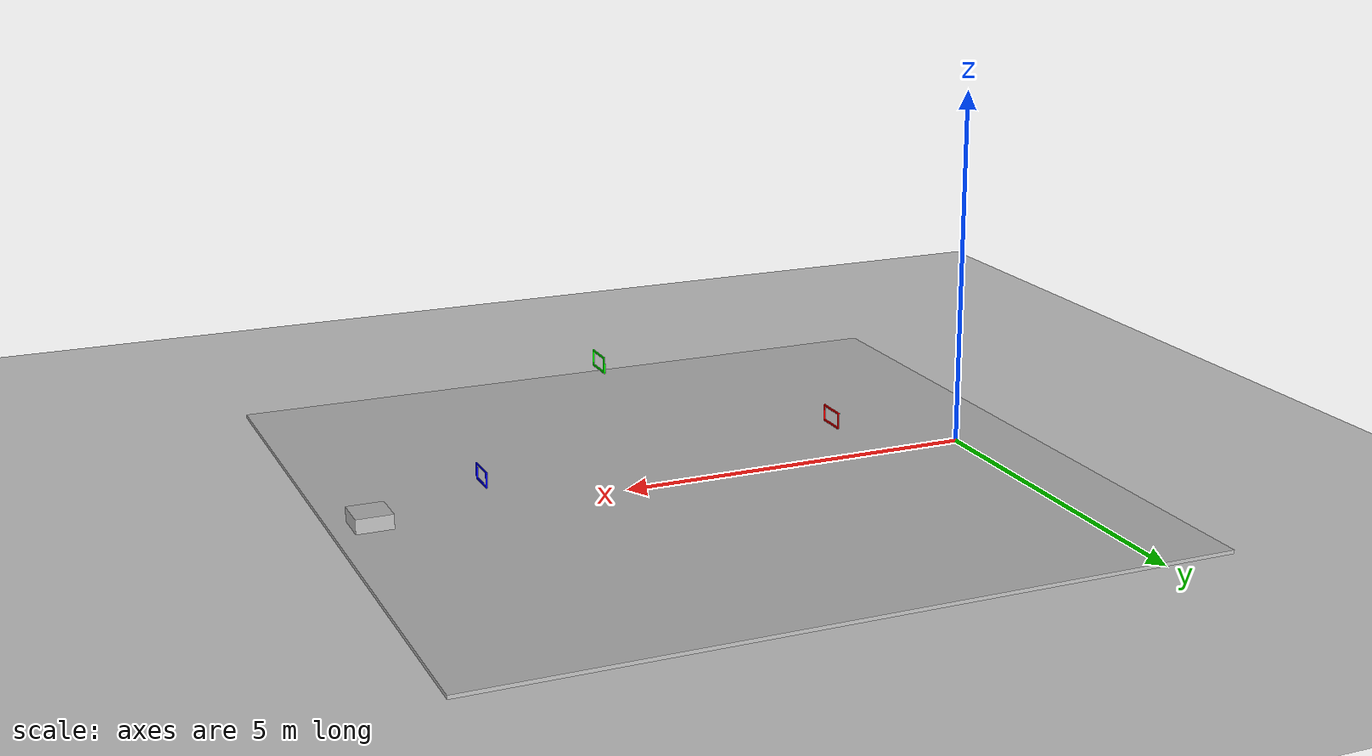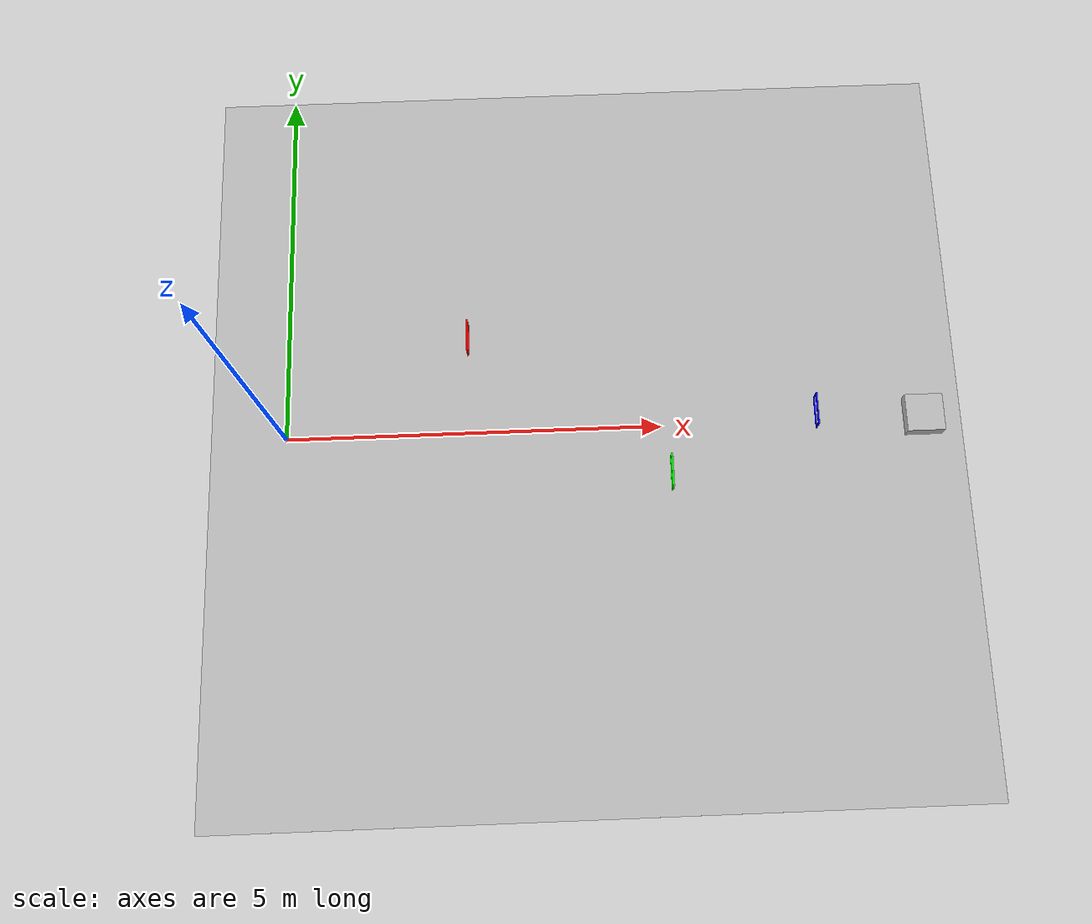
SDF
<?xml version="1.0" ?>
<sdf version="1.5">
  <world name="default">

    <!-- A global light source -->
    <scene>
	    <ambient>0.5 0.5 0.5 1.0</ambient>
	    <shadows>true</shadows>
    </scene>

    <include>
      <uri>model://sun</uri>
    </include>

    <!-- A ground plane -->
    <include>
      <uri>model://ground_plane</uri>
    </include>

    <!-- Coordinates -->
    <spherical_coordinates>
      <surface_model>EARTH_WGS84</surface_model>
      <latitude_deg>0</latitude_deg>
      <longitude_deg>0</longitude_deg>
      <elevation>0</elevation>
      <heading_deg>0</heading_deg>
    </spherical_coordinates>

    <!-- Camera -->
     <gui fullscreen='0'>
      <camera name='user_camera'>
        <pose>7.8971 -5.86361 6.86576 0 0.507643 2.3202</pose>
        <view_controller>orbit</view_controller>
        <projection_type>perspective</projection_type>
      </camera>
    </gui>

   <!-- Area de vuelo -->
    <include>
      <name>floor</name>
      <uri>model://floor</uri>
      <pose>4 0 0.025 0 0 -1.57</pose>
    </include>

    <!-- Frames -->
    <include>
      <name>frame_red</name>
      <uri>model://frame_red</uri>
      <pose>2.5 1 1 0 0 0</pose>
    </include>

    <include>
      <name>frame_green</name>
      <uri>model://frame_green</uri>
      <pose>5 -1 1.5 0 0 0</pose>
    </include>

    <include>
      <name>frame_blue</name>
      <uri>model://frame_blue</uri>
      <pose>7 0 0.5 0 0 0</pose>
    </include>

    <include>
      <name>base_drone</name>
      <uri>model://base_drone</uri>
      <pose>8.4821 0 0 0 0 0</pose>
    </include>

    <plugin name="SIAM_God" filename="libSIAM_God.so"/>
  </world>
</sdf>

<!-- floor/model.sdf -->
<sdf version="1.5">

  <model name='floor'>
    <static>true</static>
    <link name='link'>
      <collision name='collisionsuelo'>
        <geometry>
          <box>
            <size>10 10 0.05</size>
          </box>
        </geometry>

        <surface>
          <friction>
            <ode>
              <mu>100.0</mu>
              <mu2>50.0</mu2>
              <slip1>0.0</slip1>
              <slip2>0.0</slip2>
            </ode>
          </friction>
        </surface>

      </collision>

      <visual name='visualsuelo'>
        <geometry>
          <box>
            <size>10 10 0.05</size>
          </box>
        </geometry>
        <material>
          <script>

            <uri>model://floor/scripts</uri>
            <uri>model://floor/materials</uri>
            <name>floorMat/Diffuse</name>
          </script>
        </material>
      </visual>
      <self_collide>0</self_collide>
      <kinematic>0</kinematic>
      <gravity>1</gravity>
    </link>
  </model>

</sdf>

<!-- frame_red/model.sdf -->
<sdf version="1.5">
<model name="frame_red">

<static>true</static>

<link name='framelink'>
    <!-- Marco de 40x20 cms. Borde de 3cms. -->

    <visual name='up'>
        <pose>0 0 0.10 0 0 0</pose>
        <geometry>
          <box>
            <size>0.02 0.42 0.02</size>
          </box>
        </geometry>
        <material>
          <ambient>1 0 0 1</ambient>
          <diffuse>1 0 0 1</diffuse>
        </material>
    </visual>

    <collision name='up'>
        <pose>0 0 0.10 0 0 0</pose>
        <geometry>
          <box>
            <size>0.02 0.42 0.02</size>
          </box>
        </geometry>
        <surface>
          <friction>
            <ode>
              <mu>0.1</mu>
              <mu2>0.2</mu2>
              <slip1>1.0</slip1>
              <slip2>1.0</slip2>
            </ode>
          </friction>
        </surface>
    </collision>

    <visual name='down'>
        <pose>0 0 -0.10 0 0 0</pose>
        <geometry>
          <box>
            <size>0.02 0.42 0.02</size>
          </box>
        </geometry>
        <material>
          <ambient>1 0 0 1</ambient>
          <diffuse>1 0 0 1</diffuse>
        </material>
    </visual>

    <collision name='down'>
        <pose>0 0 -0.10 0 0 0</pose>
        <geometry>
          <box>
            <size>0.02 0.42 0.02</size>
          </box>
        </geometry>
        <surface>
          <friction>
            <ode>
              <mu>0.1</mu>
              <mu2>0.2</mu2>
              <slip1>1.0</slip1>
              <slip2>1.0</slip2>
            </ode>
          </friction>
        </surface>
    </collision>

    <visual name='left'>
        <pose>0 -0.20 0 0 0 0</pose>
        <geometry>
          <box>
            <size>0.02 0.02 0.18</size>
          </box>
        </geometry>
        <material>
          <ambient>1 0 0 1</ambient>
          <diffuse>1 0 0 1</diffuse>
        </material>
    </visual>

    <collision name='left'>
        <pose>0 -0.20 0 0 0 0</pose>
        <geometry>
          <box>
            <size>0.02 0.02 0.18</size>
          </box>
        </geometry>
        <surface>
          <friction>
            <ode>
              <mu>0.1</mu>
              <mu2>0.2</mu2>
              <slip1>1.0</slip1>
              <slip2>1.0</slip2>
            </ode>
          </friction>
        </surface>
    </collision>

    <visual name='right'>
        <pose>0 0.20 0 0 0 0</pose>
        <geometry>
          <box>
            <size>0.02 0.02 0.18</size>
          </box>
        </geometry>
        <material>
          <ambient>1 0 0 1</ambient>
          <diffuse>1 0 0 1</diffuse>
        </material>
    </visual>

    <collision name='right'>
        <pose>0 0.20 0 0 0 0</pose>
        <geometry>
          <box>
            <size>0.02 0.02 0.18</size>
          </box>
        </geometry>
        <surface>
          <friction>
            <ode>
              <mu>0.1</mu>
              <mu2>0.2</mu2>
              <slip1>1.0</slip1>
              <slip2>1.0</slip2>
            </ode>
          </friction>
        </surface>
    </collision>

</link>

</model>

</sdf>

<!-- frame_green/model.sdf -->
<sdf version="1.5">
<model name="frame_green">

<static>true</static>

<link name='framelink'>
    <!-- Marco de 40x20 cms. Borde de 3cms. -->

    <visual name='up'>
        <pose>0 0 0.10 0 0 0</pose>
        <geometry>
          <box>
            <size>0.02 0.42 0.02</size>
          </box>
        </geometry>
        <material>
          <ambient>0 1 0 1</ambient>
          <diffuse>0 1 0 1</diffuse>
        </material>
    </visual>

    <collision name='up'>
        <pose>0 0 0.10 0 0 0</pose>
        <geometry>
          <box>
            <size>0.02 0.42 0.02</size>
          </box>
        </geometry>
        <surface>
          <friction>
            <ode>
              <mu>0.1</mu>
              <mu2>0.2</mu2>
              <slip1>1.0</slip1>
              <slip2>1.0</slip2>
            </ode>
          </friction>
        </surface>
    </collision>

    <visual name='down'>
        <pose>0 0 -0.10 0 0 0</pose>
        <geometry>
          <box>
            <size>0.02 0.42 0.02</size>
          </box>
        </geometry>
        <material>
          <ambient>0 1 0 1</ambient>
          <diffuse>0 1 0 1</diffuse>
        </material>
    </visual>

    <collision name='down'>
        <pose>0 0 -0.10 0 0 0</pose>
        <geometry>
          <box>
            <size>0.02 0.42 0.02</size>
          </box>
        </geometry>
        <surface>
          <friction>
            <ode>
              <mu>0.1</mu>
              <mu2>0.2</mu2>
              <slip1>1.0</slip1>
              <slip2>1.0</slip2>
            </ode>
          </friction>
        </surface>
    </collision>

    <visual name='left'>
        <pose>0 -0.20 0 0 0 0</pose>
        <geometry>
          <box>
            <size>0.02 0.02 0.18</size>
          </box>
        </geometry>
        <material>
          <ambient>0 1 0 1</ambient>
          <diffuse>0 1 0 1</diffuse>
        </material>
    </visual>

    <collision name='left'>
        <pose>0 -0.20 0 0 0 0</pose>
        <geometry>
          <box>
            <size>0.02 0.02 0.18</size>
          </box>
        </geometry>
        <surface>
          <friction>
            <ode>
              <mu>0.1</mu>
              <mu2>0.2</mu2>
              <slip1>1.0</slip1>
              <slip2>1.0</slip2>
            </ode>
          </friction>
        </surface>
    </collision>

    <visual name='right'>
        <pose>0 0.20 0 0 0 0</pose>
        <geometry>
          <box>
            <size>0.02 0.02 0.18</size>
          </box>
        </geometry>
        <material>
          <ambient>0 1 0 1</ambient>
          <diffuse>0 1 0 1</diffuse>
        </material>
    </visual>

    <collision name='right'>
        <pose>0 0.20 0 0 0 0</pose>
        <geometry>
          <box>
            <size>0.02 0.02 0.18</size>
          </box>
        </geometry>
        <surface>
          <friction>
            <ode>
              <mu>0.1</mu>
              <mu2>0.2</mu2>
              <slip1>1.0</slip1>
              <slip2>1.0</slip2>
            </ode>
          </friction>
        </surface>
    </collision>

</link>

</model>

</sdf>

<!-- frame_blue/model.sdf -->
<sdf version="1.5">
<model name="frame_blue">

<static>true</static>

<link name='framelink'>
    <!-- Marco de 40x20 cms. Borde de 3cms. -->

    <visual name='up'>
        <pose>0 0 0.10 0 0 0</pose>
        <geometry>
          <box>
            <size>0.02 0.42 0.02</size>
          </box>
        </geometry>
        <material>
          <ambient>0 0 1 1</ambient>
          <diffuse>0 0 1 1</diffuse>
        </material>
    </visual>

    <collision name='up'>
        <pose>0 0 0.10 0 0 0</pose>
        <geometry>
          <box>
            <size>0.02 0.42 0.02</size>
          </box>
        </geometry>
        <surface>
          <friction>
            <ode>
              <mu>0.1</mu>
              <mu2>0.2</mu2>
              <slip1>1.0</slip1>
              <slip2>1.0</slip2>
            </ode>
          </friction>
        </surface>
    </collision>

    <visual name='down'>
        <pose>0 0 -0.10 0 0 0</pose>
        <geometry>
          <box>
            <size>0.02 0.42 0.02</size>
          </box>
        </geometry>
        <material>
          <ambient>0 0 1 1</ambient>
          <diffuse>0 0 1 1</diffuse>
        </material>
    </visual>

    <collision name='down'>
        <pose>0 0 -0.10 0 0 0</pose>
        <geometry>
          <box>
            <size>0.02 0.42 0.02</size>
          </box>
        </geometry>
        <surface>
          <friction>
            <ode>
              <mu>0.1</mu>
              <mu2>0.2</mu2>
              <slip1>1.0</slip1>
              <slip2>1.0</slip2>
            </ode>
          </friction>
        </surface>
    </collision>

    <visual name='left'>
        <pose>0 -0.20 0 0 0 0</pose>
        <geometry>
          <box>
            <size>0.02 0.02 0.18</size>
          </box>
        </geometry>
        <material>
          <ambient>0 0 1 1</ambient>
          <diffuse>0 0 1 1</diffuse>
        </material>
    </visual>

    <collision name='left'>
        <pose>0 -0.20 0 0 0 0</pose>
        <geometry>
          <box>
            <size>0.02 0.02 0.18</size>
          </box>
        </geometry>
        <surface>
          <friction>
            <ode>
              <mu>0.1</mu>
              <mu2>0.2</mu2>
              <slip1>1.0</slip1>
              <slip2>1.0</slip2>
            </ode>
          </friction>
        </surface>
    </collision>

    <visual name='right'>
        <pose>0 0.20 0 0 0 0</pose>
        <geometry>
          <box>
            <size>0.02 0.02 0.18</size>
          </box>
        </geometry>
        <material>
          <ambient>0 0 1 1</ambient>
          <diffuse>0 0 1 1</diffuse>
        </material>
    </visual>

    <collision name='right'>
        <pose>0 0.20 0 0 0 0</pose>
        <geometry>
          <box>
            <size>0.02 0.02 0.18</size>
          </box>
        </geometry>
        <surface>
          <friction>
            <ode>
              <mu>0.1</mu>
              <mu2>0.2</mu2>
              <slip1>1.0</slip1>
              <slip2>1.0</slip2>
            </ode>
          </friction>
        </surface>
    </collision>

</link>

</model>

</sdf>

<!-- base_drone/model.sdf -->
<sdf version="1.5">

	<model name="base_drone">
	  <static>true</static>
	  <link name="link">

	    <collision name="collision">

		    <geometry>
		      <box>
		        <size>0.5 0.5 0.50</size>
		      </box>
		    </geometry>

        <surface>
          <friction>
            <ode>
              <mu>100.0</mu>
              <mu2>50.0</mu2>
              <slip1>0.0</slip1>
              <slip2>0.0</slip2>
            </ode>
          </friction>
        </surface>

	    </collision>

      <visual name="visual">
		    <geometry>
		      <box>
		        <size>0.5 0.5 0.50</size>
		      </box>
		    </geometry>
	    </visual>

	  </link>
	</model>

</sdf>
